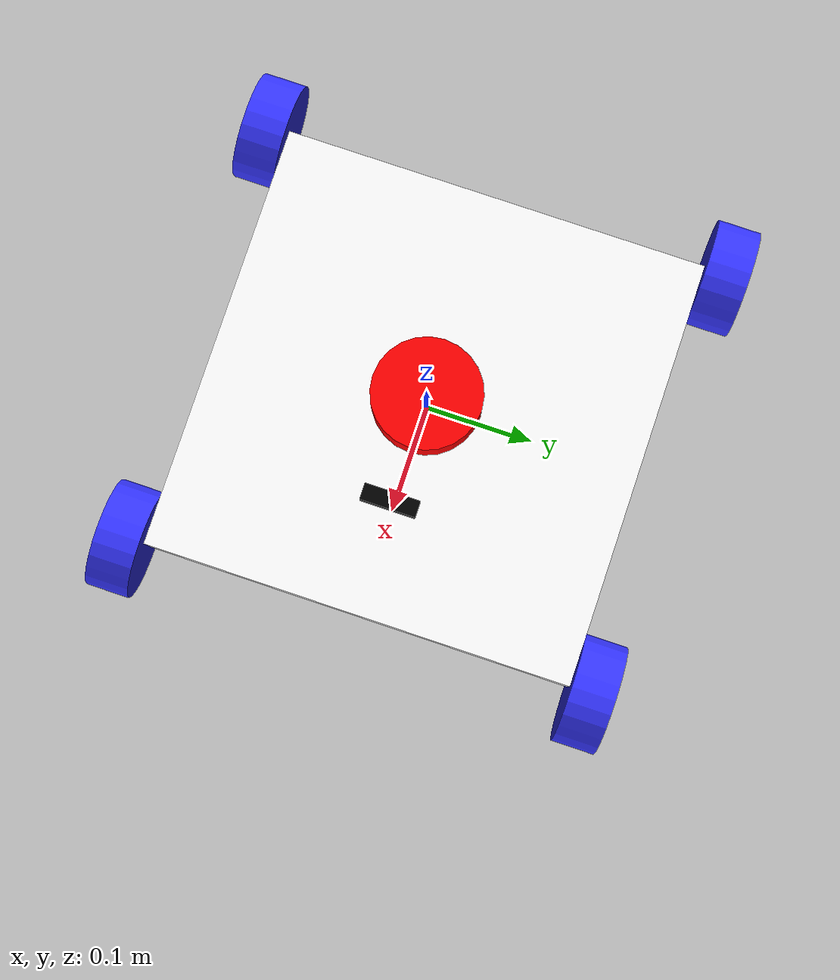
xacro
<?xml version="1.0"?>
<robot xmlns:xacro="http://www.ros.org/wiki/xacro" name="foxtrot_ackermann">

    <!-- Included URDF Modules -->
    <xacro:include filename="properties.xacro"/>
    <xacro:include filename="robot_core.xacro"/>
    <!-- Including sensors -->
    <xacro:include filename="lidar.xacro"/>
    <xacro:include filename="imu.xacro"/>
    <xacro:include filename="camera.xacro"/>
    <!-- Including ros2_control -->
    <xacro:include filename="ros2_control.xacro"/>

</robot>

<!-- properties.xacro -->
<robot xmlns:xacro="http://www.ros.org/wiki/xacro">
    <!-- Color Definitions -->
    <material name="white">
        <color rgba= "1 1 1 1"/>
    </material>

    <material name="orange">
        <color rgba= "1 0.3 0.1 1"/>
    </material>

    <material name="blue">
        <color rgba= "0.2 0.2 1 1"/>
    </material>

    <material name="black">
        <color rgba= "0 0 0 1"/>
    </material>

    <material name="red">
        <color rgba= "1 0 0 1"/>
    </material>

</robot>

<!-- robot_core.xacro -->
<robot xmlns:xacro="http://www.ros.org/wiki/xacro">

    <xacro:include filename="inertial_macros.xacro"/>

    <xacro:property name="rad_w" value="0.05"/>
    <xacro:property name="le_w" value="0.04"/>
    <xacro:property name="ly" value="0.4"/>
    <xacro:property name="lx" value="0.4"/>
    <xacro:property name="lz" value="0.05"/>

    <link name="base_link"></link>

    <joint name="base_link_joint" type="fixed">
        <parent link="base_link"/>
        <child link="chassis"/>
        <origin xyz="0 0 0"/>
    </joint>

    <link name="chassis">
        <visual>
            <geometry><box size="${lx} ${ly} ${lz}"/></geometry>
            <material name="white"/>
        </visual>
        <collision>
            <geometry><box size="${lx} ${ly} ${lz}"/></geometry>
        </collision>
        <xacro:inertial_box mass="5.0" x="${lx}" y="${ly}" z="${lz}">
            <origin xyz="0 0 0" rpy="0 0 0"/>
        </xacro:inertial_box>
    </link>
    <!-- REAR WHEELS (Traction) -->
    <joint name="rear_left_wheel_joint" type="continuous">
        <parent link="chassis"/>
        <child link="rear_left_wheel"/>
        <origin xyz="${-lx/2} ${ly/2+le_w/2} 0.0" rpy="-${pi/2} 0 0"/>
        <axis xyz="0 0 1"/>
    </joint>
    <link name="rear_left_wheel">
        <visual><geometry><cylinder radius="${rad_w}" length="${le_w}"/></geometry><material name="blue"/></visual>
        <collision><geometry><sphere radius="${rad_w}" /></geometry></collision>
        <xacro:inertial_cylinder mass="0.1" length="${le_w}" radius="${rad_w}"><origin xyz="0 0 0" rpy="0 0 0"/></xacro:inertial_cylinder>
    </link>
    <joint name="rear_right_wheel_joint" type="continuous">
        <parent link="chassis"/>
        <child link="rear_right_wheel"/>
        <origin xyz="${-lx/2} -${ly/2+le_w/2} 0.0" rpy="${pi/2} 0 0"/>
        <axis xyz="0 0 -1"/>
    </joint>
    <link name="rear_right_wheel">
        <visual><geometry><cylinder radius="${rad_w}" length="${le_w}"/></geometry><material name="blue"/></visual>
        <collision><geometry><sphere radius="${rad_w}" /></geometry></collision>
        <xacro:inertial_cylinder mass="0.1" length="${le_w}" radius="${rad_w}"><origin xyz="0 0 0" rpy="0 0 0"/></xacro:inertial_cylinder>
    </link>
    <!-- FRONT STEERING KNUCKLES -->
    <joint name="front_left_steer_joint" type="revolute">
        <parent link="chassis"/>
        <child link="front_left_steer_link"/>
        <origin xyz="${lx/2} ${ly/2} 0.0" rpy="0 0 0"/>
        <axis xyz="0 0 1"/>
        <limit lower="-0.6" upper="0.6" effort="10.0" velocity="2.0"/>
    </joint>
    <link name="front_left_steer_link">
        <xacro:inertial_cylinder mass="0.05" length="0.01" radius="0.02"><origin xyz="0 0 0" rpy="0 0 0"/></xacro:inertial_cylinder>
    </link>
    <joint name="front_right_steer_joint" type="revolute">
        <parent link="chassis"/>
        <child link="front_right_steer_link"/>
        <origin xyz="${lx/2} -${ly/2} 0.0" rpy="0 0 0"/>
        <axis xyz="0 0 1"/>
        <limit lower="-0.6" upper="0.6" effort="10.0" velocity="2.0"/>
    </joint>
    <link name="front_right_steer_link">
        <xacro:inertial_cylinder mass="0.05" length="0.01" radius="0.02"><origin xyz="0 0 0" rpy="0 0 0"/></xacro:inertial_cylinder>
    </link>
    <!-- FRONT WHEELS -->
    <joint name="front_left_wheel_joint" type="continuous">
        <parent link="front_left_steer_link"/>
        <child link="front_left_wheel"/>
        <origin xyz="0 ${le_w/2} 0.0" rpy="-${pi/2} 0 0"/>
        <axis xyz="0 0 1"/>
    </joint>
    <link name="front_left_wheel">
        <visual><geometry><cylinder radius="${rad_w}" length="${le_w}"/></geometry><material name="blue"/></visual>
        <collision><geometry><sphere radius="${rad_w}"/></geometry></collision>
        <xacro:inertial_cylinder mass="0.1" length="${le_w}" radius="${rad_w}"><origin xyz="0 0 0" rpy="0 0 0"/></xacro:inertial_cylinder>
    </link>
    <joint name="front_right_wheel_joint" type="continuous">
        <parent link="front_right_steer_link"/>
        <child link="front_right_wheel"/>
        <origin xyz="0 -${le_w/2} 0.0" rpy="${pi/2} 0 0"/>
        <axis xyz="0 0 -1"/>
    </joint>
    <link name="front_right_wheel">
        <visual><geometry><cylinder radius="${rad_w}" length="${le_w}"/></geometry><material name="blue"/></visual>
        <collision><geometry><sphere radius="${rad_w}"/></geometry></collision>
        <xacro:inertial_cylinder mass="0.1" length="${le_w}" radius="${rad_w}"><origin xyz="0 0 0" rpy="0 0 0"/></xacro:inertial_cylinder>
    </link>
</robot>

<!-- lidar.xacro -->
<robot xmlns:xacro="http://www.ros.org/wiki/xacro" >
    <!-- Lidar physical representation link -->
    <link name="lidar_link">
         <visual>
            <geometry>
                <cylinder radius="${rad_w}" length="${le_w}"/>
            </geometry>
            <material name="red"/>
        </visual>
        <collision>
            <geometry>
                <cylinder radius="${rad_w}" length="${le_w}"/>
            </geometry>
        </collision>
        <xacro:inertial_cylinder mass="0.1" length="${le_w}" radius="${rad_w}">
            <origin xyz="0 0 0" rpy="0 0 0"/>
        </xacro:inertial_cylinder>
    </link>

    <joint name="lidar_chassis_joint" type="fixed">
        <parent link="chassis"/>
        <child link="lidar_link"/>
        <origin xyz="0 0 ${le_w/2+lz}" rpy="0 0 0"/>
    </joint>

<!-- Here you declare the lidar class that gazebo will interpret -->
    <gazebo reference="lidar_link">
    <sensor name="lidar" type="gpu_lidar">
        <always_on>true</always_on>
        <!-- Frequency of sampling 10hz -->
        <update_rate>45</update_rate>
        <visualize>true</visualize>
        <topic>scan</topic>
        <gz_frame_id>lidar_link</gz_frame_id>

        <lidar>
        <!-- Lidar Rotation Mapping -->
        <scan>
            <horizontal>
            <samples>720</samples>
            <min_angle>-3.14159</min_angle>
            <max_angle>3.14159</max_angle>
            </horizontal>
        </scan>
        <!-- Maximum and minimum measurable values in meters -->
        <range>
            <min>0.05</min>
            <max>12.0</max>
        </range>
        </lidar>
    </sensor>
    </gazebo>

</robot>

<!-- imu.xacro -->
<robot xmlns:xacro="http://www.ros.org/wiki/xacro">

    <!-- IMU physical representation link -->
    <link name="imu_link">
        <visual>
            <geometry>
                <box size="0.02 0.02 0.01"/>
            </geometry>
            <material name="black"/>
        </visual>
        <collision>
            <geometry>
                <box size="0.02 0.02 0.01"/>
            </geometry>
        </collision>
        <inertial>
            <mass value="0.05" />
            <origin xyz="0 0 0" rpy="0 0 0" />
            <inertia ixx="0.00001" ixy="0" ixz="0" iyy="0.00001" iyz="0" izz="0.00001" />
        </inertial>
    </link>

    <joint name="imu_chassis_joint" type="fixed">
        <parent link="chassis"/>
        <child link="imu_link"/>
        <!-- Adjust origin Z value as needed to sit above your chassis -->
        <origin xyz="0 0 0.05" rpy="0 0 0"/>
    </joint>

    <!-- Required plugin to process IMU data in Gazebo Harmonic -->
    <gazebo>
        <plugin filename="gz-sim-imu-system" name="gz::sim::systems::Imu"/>
    </gazebo>

    <!-- Here you declare the imu class that gazebo will interpret -->
    <gazebo reference="imu_link">
        <sensor name="imu" type="imu">
            <always_on>true</always_on>
            <!-- Frequency of sampling 100hz -->
            <update_rate>100</update_rate>
            <visualize>true</visualize>
            <topic>imu</topic>
            <gz_frame_id>imu_link</gz_frame_id>

            <imu>
                <angular_velocity>
                    <x><noise type="gaussian"><mean>0.0</mean><stddev>0.0002</stddev></noise></x>
                    <y><noise type="gaussian"><mean>0.0</mean><stddev>0.0002</stddev></noise></y>
                    <z><noise type="gaussian"><mean>0.0</mean><stddev>0.0002</stddev></noise></z>
                </angular_velocity>
                <linear_acceleration>
                    <x><noise type="gaussian"><mean>0.0</mean><stddev>0.017</stddev></noise></x>
                    <y><noise type="gaussian"><mean>0.0</mean><stddev>0.017</stddev></noise></y>
                    <z><noise type="gaussian"><mean>0.0</mean><stddev>0.017</stddev></noise></z>
                </linear_acceleration>
            </imu>
        </sensor>
    </gazebo>

</robot>

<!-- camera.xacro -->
<robot xmlns:xacro="http://www.ros.org/wiki/xacro">

    <!-- Physical Camera Link -->
    <link name="camera_link">
        <visual>
            <geometry>
                <box size="0.015 0.05 0.015"/>
            </geometry>
            <material name="black"/>
        </visual>
        <collision>
            <geometry>
                <box size="0.015 0.05 0.015"/>
            </geometry>
        </collision>
        <inertial>
            <mass value="0.05"/>
            <origin xyz="0 0 0" rpy="0 0 0"/>
            <inertia ixx="0.00001" ixy="0" ixz="0" iyy="0.00001" iyz="0" izz="0.00001"/>
        </inertial>
    </link>

    <joint name="camera_chassis_joint" type="fixed">
        <parent link="chassis"/>
        <child link="camera_link"/>
        <!-- Placed at the front of the chassis. Adjust X and Z as necessary -->
        <origin xyz="0.1 0 0.1" rpy="0 0 0"/>
    </joint>

    <!-- Virtual Optical Link for ROS 2 Image Data Convention -->
    <link name="camera_link_optical"></link>

    <joint name="camera_optical_joint" type="fixed">
        <parent link="camera_link"/>
        <child link="camera_link_optical"/>
        <origin xyz="0 0 0" rpy="${-pi/2} 0 ${-pi/2}"/>
    </joint>
    <!-- Gazebo Camera Configuration -->
    <gazebo reference="camera_link">
        <sensor name="robot_camera" type="camera">
            <always_on>true</always_on>
            <update_rate>30</update_rate>
            <visualize>true</visualize>
            <topic>camera/image_raw</topic>
            <!-- Data bound to the optical frame -->
            <gz_frame_id>camera_link_optical</gz_frame_id>

            <camera>
                <horizontal_fov>1.089</horizontal_fov> <!-- Approx 62 degrees -->
                <image>
                    <width>640</width>
                    <height>480</height>
                    <format>R8G8B8</format>
                </image>
                <clip>
                    <near>0.05</near>
                    <far>8.0</far>
                </clip>
                <noise>
                    <type>gaussian</type>
                    <mean>0.0</mean>
                    <stddev>0.007</stddev>
                </noise>
            </camera>
        </sensor>
    </gazebo>

</robot>
